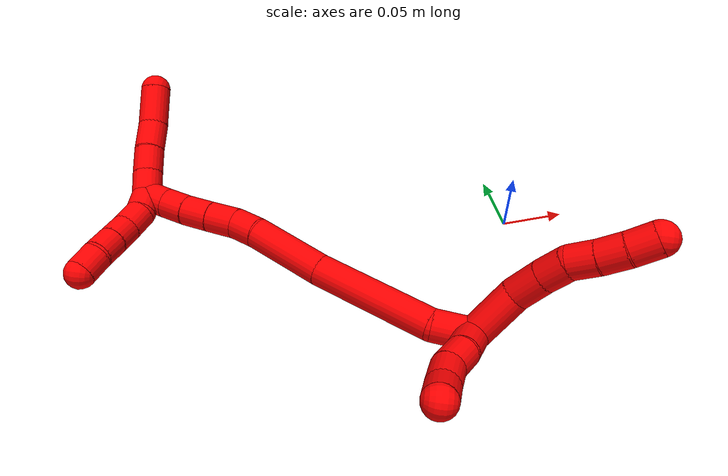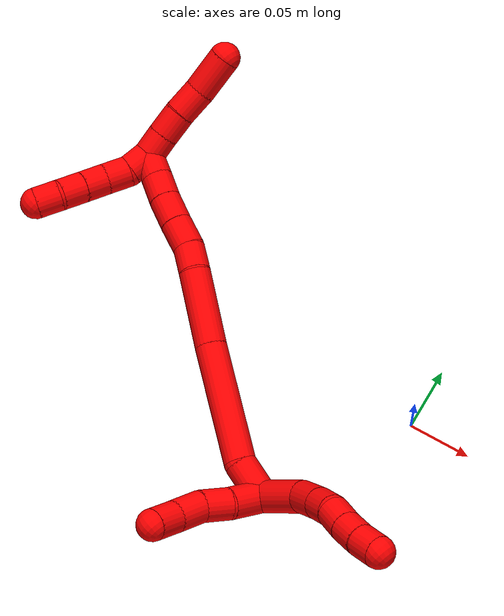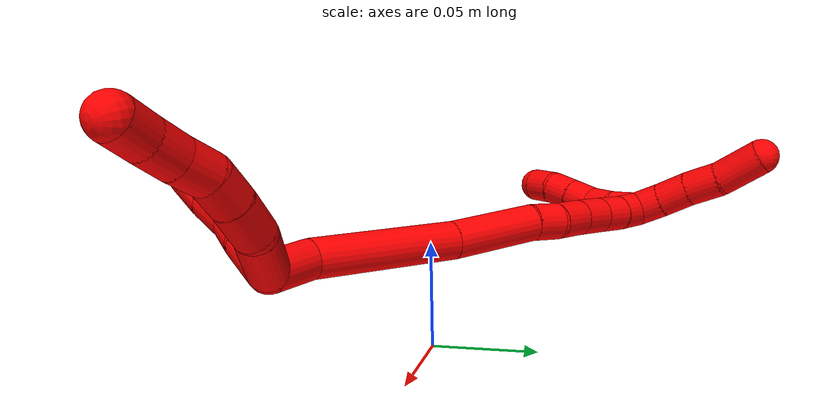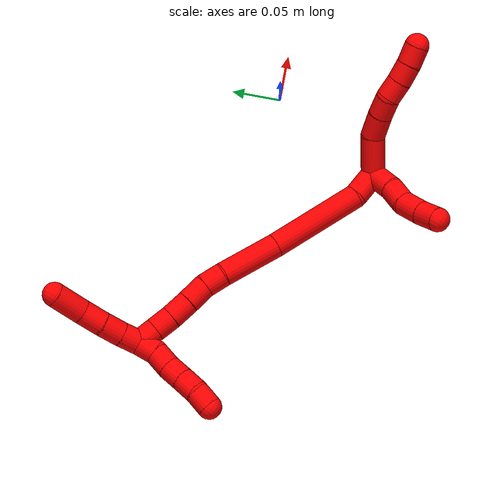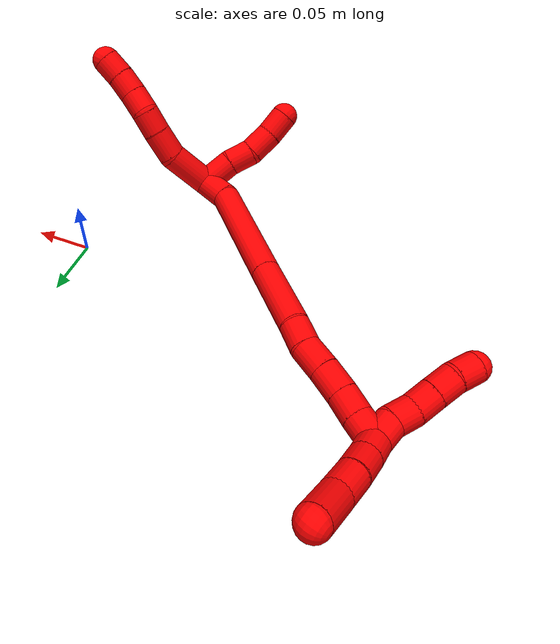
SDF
<sdf version="1.7">
 <world name="default">
  <model name="2">
   <static>0</static>
   <link name="2">
    <collision name="collision-cylinder-e_1_2_8">
     <pose>0.00149 0.017385 -0.012236 -2.18411 0.069969 -0.134663</pose>
     <geometry><cylinder><radius>0.0125</radius><length>0.042623</length></cylinder></geometry>
     <surface>
      <friction><ode><mu>1.16</mu><mu2>1.16</mu2><slip1>0</slip1><slip2>0</slip2></ode></friction>
      <contact><ode><kp>1e+06</kp><kd>1</kd><max_vel>0</max_vel><min_depth>0.001</min_depth></ode></contact>
     </surface>
    </collision>
    <visual name="visual-cylinder-e_1_2_8">
     <pose>0.00149 0.017385 -0.012236 -2.18411 0.069969 -0.134663</pose>
     <geometry><cylinder><radius>0.0125</radius><length>0.042623</length></cylinder></geometry>
     <material><ambient>1 0 0 1</ambient></material>
    </visual>
    <collision name="collision-cylinder-e_2_8_9">
     <pose>0.00813 0.043892 -0.032093 -2.26667 0.408887 -0.834592</pose>
     <geometry><cylinder><radius>0.0125</radius><length>0.025909</length></cylinder></geometry>
     <surface>
      <friction><ode><mu>1.16</mu><mu2>1.16</mu2><slip1>0</slip1><slip2>0</slip2></ode></friction>
      <contact><ode><kp>1e+06</kp><kd>1</kd><max_vel>0</max_vel><min_depth>0.001</min_depth></ode></contact>
     </surface>
    </collision>
    <visual name="visual-cylinder-e_2_8_9">
     <pose>0.00813 0.043892 -0.032093 -2.26667 0.408887 -0.834592</pose>
     <geometry><cylinder><radius>0.0125</radius><length>0.025909</length></cylinder></geometry>
     <material><ambient>1 0 0 1</ambient></material>
    </visual>
    <collision name="collision-cylinder-e_3_9_10">
     <pose>0.017939 0.059899 -0.046176 -2.32469 0.458268 -0.98856</pose>
     <geometry><cylinder><radius>0.0125</radius><length>0.021059</length></cylinder></geometry>
     <surface>
      <friction><ode><mu>1.16</mu><mu2>1.16</mu2><slip1>0</slip1><slip2>0</slip2></ode></friction>
      <contact><ode><kp>1e+06</kp><kd>1</kd><max_vel>0</max_vel><min_depth>0.001</min_depth></ode></contact>
     </surface>
    </collision>
    <visual name="visual-cylinder-e_3_9_10">
     <pose>0.017939 0.059899 -0.046176 -2.32469 0.458268 -0.98856</pose>
     <geometry><cylinder><radius>0.0125</radius><length>0.021059</length></cylinder></geometry>
     <material><ambient>1 0 0 1</ambient></material>
    </visual>
    <collision name="collision-cylinder-e_4_10_11">
     <pose>0.026878 0.070784 -0.060901 -2.69064 0.436354 -1.5368</pose>
     <geometry><cylinder><radius>0.0125</radius><length>0.020255</length></cylinder></geometry>
     <surface>
      <friction><ode><mu>1.16</mu><mu2>1.16</mu2><slip1>0</slip1><slip2>0</slip2></ode></friction>
      <contact><ode><kp>1e+06</kp><kd>1</kd><max_vel>0</max_vel><min_depth>0.001</min_depth></ode></contact>
     </surface>
    </collision>
    <visual name="visual-cylinder-e_4_10_11">
     <pose>0.026878 0.070784 -0.060901 -2.69064 0.436354 -1.5368</pose>
     <geometry><cylinder><radius>0.0125</radius><length>0.020255</length></cylinder></geometry>
     <material><ambient>1 0 0 1</ambient></material>
    </visual>
    <collision name="collision-cylinder-e_5_11_12">
     <pose>0.034925 0.079522 -0.077129 -2.60504 0.386006 -1.23604</pose>
     <geometry><cylinder><radius>0.0125</radius><length>0.02001</length></cylinder></geometry>
     <surface>
      <friction><ode><mu>1.16</mu><mu2>1.16</mu2><slip1>0</slip1><slip2>0</slip2></ode></friction>
      <contact><ode><kp>1e+06</kp><kd>1</kd><max_vel>0</max_vel><min_depth>0.001</min_depth></ode></contact>
     </surface>
    </collision>
    <visual name="visual-cylinder-e_5_11_12">
     <pose>0.034925 0.079522 -0.077129 -2.60504 0.386006 -1.23604</pose>
     <geometry><cylinder><radius>0.0125</radius><length>0.02001</length></cylinder></geometry>
     <material><ambient>1 0 0 1</ambient></material>
    </visual>
    <collision name="collision-cylinder-e_6_12_6">
     <pose>0.041516 0.089584 -0.093165 -2.55838 0.284176 -0.889481</pose>
     <geometry><cylinder><radius>0.0125</radius><length>0.020144</length></cylinder></geometry>
     <surface>
      <friction><ode><mu>1.16</mu><mu2>1.16</mu2><slip1>0</slip1><slip2>0</slip2></ode></friction>
      <contact><ode><kp>1e+06</kp><kd>1</kd><max_vel>0</max_vel><min_depth>0.001</min_depth></ode></contact>
     </surface>
    </collision>
    <visual name="visual-cylinder-e_6_12_6">
     <pose>0.041516 0.089584 -0.093165 -2.55838 0.284176 -0.889481</pose>
     <geometry><cylinder><radius>0.0125</radius><length>0.020144</length></cylinder></geometry>
     <material><ambient>1 0 0 1</ambient></material>
    </visual>
    <collision name="collision-cylinder-e_1_2_13">
     <pose>0.014083 -0.00192 0.004566 0.398035 1.2326 0.283804</pose>
     <geometry><cylinder><radius>0.0125</radius><length>0.029857</length></cylinder></geometry>
     <surface>
      <friction><ode><mu>1.16</mu><mu2>1.16</mu2><slip1>0</slip1><slip2>0</slip2></ode></friction>
      <contact><ode><kp>1e+06</kp><kd>1</kd><max_vel>0</max_vel><min_depth>0.001</min_depth></ode></contact>
     </surface>
    </collision>
    <visual name="visual-cylinder-e_1_2_13">
     <pose>0.014083 -0.00192 0.004566 0.398035 1.2326 0.283804</pose>
     <geometry><cylinder><radius>0.0125</radius><length>0.029857</length></cylinder></geometry>
     <material><ambient>1 0 0 1</ambient></material>
    </visual>
    <collision name="collision-cylinder-e_2_13_14">
     <pose>0.037938 -0.006459 0.014443 0.458131 1.02601 0.261185</pose>
     <geometry><cylinder><radius>0.0125</radius><length>0.022853</length></cylinder></geometry>
     <surface>
      <friction><ode><mu>1.16</mu><mu2>1.16</mu2><slip1>0</slip1><slip2>0</slip2></ode></friction>
      <contact><ode><kp>1e+06</kp><kd>1</kd><max_vel>0</max_vel><min_depth>0.001</min_depth></ode></contact>
     </surface>
    </collision>
    <visual name="visual-cylinder-e_2_13_14">
     <pose>0.037938 -0.006459 0.014443 0.458131 1.02601 0.261185</pose>
     <geometry><cylinder><radius>0.0125</radius><length>0.022853</length></cylinder></geometry>
     <material><ambient>1 0 0 1</ambient></material>
    </visual>
    <collision name="collision-cylinder-e_3_14_15">
     <pose>0.059641 -0.011062 0.021902 0.745805 1.33038 0.595519</pose>
     <geometry><cylinder><radius>0.0125</radius><length>0.024566</length></cylinder></geometry>
     <surface>
      <friction><ode><mu>1.16</mu><mu2>1.16</mu2><slip1>0</slip1><slip2>0</slip2></ode></friction>
      <contact><ode><kp>1e+06</kp><kd>1</kd><max_vel>0</max_vel><min_depth>0.001</min_depth></ode></contact>
     </surface>
    </collision>
    <visual name="visual-cylinder-e_3_14_15">
     <pose>0.059641 -0.011062 0.021902 0.745805 1.33038 0.595519</pose>
     <geometry><cylinder><radius>0.0125</radius><length>0.024566</length></cylinder></geometry>
     <material><ambient>1 0 0 1</ambient></material>
    </visual>
    <collision name="collision-cylinder-e_4_15_5">
     <pose>0.082825 -0.013156 0.025603 0.070403 1.43335 0.061341</pose>
     <geometry><cylinder><radius>0.0125</radius><length>0.022723</length></cylinder></geometry>
     <surface>
      <friction><ode><mu>1.16</mu><mu2>1.16</mu2><slip1>0</slip1><slip2>0</slip2></ode></friction>
      <contact><ode><kp>1e+06</kp><kd>1</kd><max_vel>0</max_vel><min_depth>0.001</min_depth></ode></contact>
     </surface>
    </collision>
    <visual name="visual-cylinder-e_4_15_5">
     <pose>0.082825 -0.013156 0.025603 0.070403 1.43335 0.061341</pose>
     <geometry><cylinder><radius>0.0125</radius><length>0.022723</length></cylinder></geometry>
     <material><ambient>1 0 0 1</ambient></material>
    </visual>
    <collision name="collision-cylinder-e_1_2_16">
     <pose>-0.001633 0.000918 0.015141 -0.060572 -0.10726 0.003253</pose>
     <geometry><cylinder><radius>0.0125</radius><length>0.030513</length></cylinder></geometry>
     <surface>
      <friction><ode><mu>1.16</mu><mu2>1.16</mu2><slip1>0</slip1><slip2>0</slip2></ode></friction>
      <contact><ode><kp>1e+06</kp><kd>1</kd><max_vel>0</max_vel><min_depth>0.001</min_depth></ode></contact>
     </surface>
    </collision>
    <visual name="visual-cylinder-e_1_2_16">
     <pose>-0.001633 0.000918 0.015141 -0.060572 -0.10726 0.003253</pose>
     <geometry><cylinder><radius>0.0125</radius><length>0.030513</length></cylinder></geometry>
     <material><ambient>1 0 0 1</ambient></material>
    </visual>
    <collision name="collision-cylinder-e_2_16_17">
     <pose>-0.023172 0.01128 0.073934 -0.21306 -0.419266 0.045495</pose>
     <geometry><cylinder><radius>0.0125</radius><length>0.097794</length></cylinder></geometry>
     <surface>
      <friction><ode><mu>1.16</mu><mu2>1.16</mu2><slip1>0</slip1><slip2>0</slip2></ode></friction>
      <contact><ode><kp>1e+06</kp><kd>1</kd><max_vel>0</max_vel><min_depth>0.001</min_depth></ode></contact>
     </surface>
    </collision>
    <visual name="visual-cylinder-e_2_16_17">
     <pose>-0.023172 0.01128 0.073934 -0.21306 -0.419266 0.045495</pose>
     <geometry><cylinder><radius>0.0125</radius><length>0.097794</length></cylinder></geometry>
     <material><ambient>1 0 0 1</ambient></material>
    </visual>
    <collision name="collision-cylinder-e_3_17_18">
     <pose>-0.054613 0.029359 0.145056 -0.304552 -0.381033 0.059176</pose>
     <geometry><cylinder><radius>0.0125</radius><length>0.062038</length></cylinder></geometry>
     <surface>
      <friction><ode><mu>1.16</mu><mu2>1.16</mu2><slip1>0</slip1><slip2>0</slip2></ode></friction>
      <contact><ode><kp>1e+06</kp><kd>1</kd><max_vel>0</max_vel><min_depth>0.001</min_depth></ode></contact>
     </surface>
    </collision>
    <visual name="visual-cylinder-e_3_17_18">
     <pose>-0.054613 0.029359 0.145056 -0.304552 -0.381033 0.059176</pose>
     <geometry><cylinder><radius>0.0125</radius><length>0.062038</length></cylinder></geometry>
     <material><ambient>1 0 0 1</ambient></material>
    </visual>
    <collision name="collision-cylinder-e_4_18_19">
     <pose>-0.07102 0.039649 0.1821 -0.171194 -0.464684 0.040601</pose>
     <geometry><cylinder><radius>0.0125</radius><length>0.02174</length></cylinder></geometry>
     <surface>
      <friction><ode><mu>1.16</mu><mu2>1.16</mu2><slip1>0</slip1><slip2>0</slip2></ode></friction>
      <contact><ode><kp>1e+06</kp><kd>1</kd><max_vel>0</max_vel><min_depth>0.001</min_depth></ode></contact>
     </surface>
    </collision>
    <visual name="visual-cylinder-e_4_18_19">
     <pose>-0.07102 0.039649 0.1821 -0.171194 -0.464684 0.040601</pose>
     <geometry><cylinder><radius>0.0125</radius><length>0.02174</length></cylinder></geometry>
     <material><ambient>1 0 0 1</ambient></material>
    </visual>
    <collision name="collision-cylinder-e_5_19_20">
     <pose>-0.078939 0.041959 0.203059 -0.057517 -0.261244 0.007558</pose>
     <geometry><cylinder><radius>0.0125</radius><length>0.023606</length></cylinder></geometry>
     <surface>
      <friction><ode><mu>1.16</mu><mu2>1.16</mu2><slip1>0</slip1><slip2>0</slip2></ode></friction>
      <contact><ode><kp>1e+06</kp><kd>1</kd><max_vel>0</max_vel><min_depth>0.001</min_depth></ode></contact>
     </surface>
    </collision>
    <visual name="visual-cylinder-e_5_19_20">
     <pose>-0.078939 0.041959 0.203059 -0.057517 -0.261244 0.007558</pose>
     <geometry><cylinder><radius>0.0125</radius><length>0.023606</length></cylinder></geometry>
     <material><ambient>1 0 0 1</ambient></material>
    </visual>
    <collision name="collision-cylinder-e_6_20_21">
     <pose>-0.085497 0.043278 0.225397 -0.060412 -0.309494 0.009427</pose>
     <geometry><cylinder><radius>0.0125</radius><length>0.023043</length></cylinder></geometry>
     <surface>
      <friction><ode><mu>1.16</mu><mu2>1.16</mu2><slip1>0</slip1><slip2>0</slip2></ode></friction>
      <contact><ode><kp>1e+06</kp><kd>1</kd><max_vel>0</max_vel><min_depth>0.001</min_depth></ode></contact>
     </surface>
    </collision>
    <visual name="visual-cylinder-e_6_20_21">
     <pose>-0.085497 0.043278 0.225397 -0.060412 -0.309494 0.009427</pose>
     <geometry><cylinder><radius>0.0125</radius><length>0.023043</length></cylinder></geometry>
     <material><ambient>1 0 0 1</ambient></material>
    </visual>
    <collision name="collision-cylinder-e_7_21_22">
     <pose>-0.092691 0.045067 0.245937 -0.116971 -0.364627 0.021589</pose>
     <geometry><cylinder><radius>0.0125</radius><length>0.020664</length></cylinder></geometry>
     <surface>
      <friction><ode><mu>1.16</mu><mu2>1.16</mu2><slip1>0</slip1><slip2>0</slip2></ode></friction>
      <contact><ode><kp>1e+06</kp><kd>1</kd><max_vel>0</max_vel><min_depth>0.001</min_depth></ode></contact>
     </surface>
    </collision>
    <visual name="visual-cylinder-e_7_21_22">
     <pose>-0.092691 0.045067 0.245937 -0.116971 -0.364627 0.021589</pose>
     <geometry><cylinder><radius>0.0125</radius><length>0.020664</length></cylinder></geometry>
     <material><ambient>1 0 0 1</ambient></material>
    </visual>
    <collision name="collision-cylinder-e_8_22_1">
     <pose>-0.099458 0.04773 0.265232 -0.156986 -0.303946 0.024091</pose>
     <geometry><cylinder><radius>0.0125</radius><length>0.020602</length></cylinder></geometry>
     <surface>
      <friction><ode><mu>1.16</mu><mu2>1.16</mu2><slip1>0</slip1><slip2>0</slip2></ode></friction>
      <contact><ode><kp>1e+06</kp><kd>1</kd><max_vel>0</max_vel><min_depth>0.001</min_depth></ode></contact>
     </surface>
    </collision>
    <visual name="visual-cylinder-e_8_22_1">
     <pose>-0.099458 0.04773 0.265232 -0.156986 -0.303946 0.024091</pose>
     <geometry><cylinder><radius>0.0125</radius><length>0.020602</length></cylinder></geometry>
     <material><ambient>1 0 0 1</ambient></material>
    </visual>
    <collision name="collision-cylinder-e_1_1_23">
     <pose>-0.094496 0.04333 0.27477 1.59947 0.934914 0.958179</pose>
     <geometry><cylinder><radius>0.0125</radius><length>0.02</length></cylinder></geometry>
     <surface>
      <friction><ode><mu>1.16</mu><mu2>1.16</mu2><slip1>0</slip1><slip2>0</slip2></ode></friction>
      <contact><ode><kp>1e+06</kp><kd>1</kd><max_vel>0</max_vel><min_depth>0.001</min_depth></ode></contact>
     </surface>
    </collision>
    <visual name="visual-cylinder-e_1_1_23">
     <pose>-0.094496 0.04333 0.27477 1.59947 0.934914 0.958179</pose>
     <geometry><cylinder><radius>0.0125</radius><length>0.02</length></cylinder></geometry>
     <material><ambient>1 0 0 1</ambient></material>
    </visual>
    <collision name="collision-cylinder-e_2_23_24">
     <pose>-0.078735 0.031909 0.277825 1.0392 0.881171 0.526885</pose>
     <geometry><cylinder><radius>0.0125</radius><length>0.02</length></cylinder></geometry>
     <surface>
      <friction><ode><mu>1.16</mu><mu2>1.16</mu2><slip1>0</slip1><slip2>0</slip2></ode></friction>
      <contact><ode><kp>1e+06</kp><kd>1</kd><max_vel>0</max_vel><min_depth>0.001</min_depth></ode></contact>
     </surface>
    </collision>
    <visual name="visual-cylinder-e_2_23_24">
     <pose>-0.078735 0.031909 0.277825 1.0392 0.881171 0.526885</pose>
     <geometry><cylinder><radius>0.0125</radius><length>0.02</length></cylinder></geometry>
     <material><ambient>1 0 0 1</ambient></material>
    </visual>
    <collision name="collision-cylinder-e_3_24_25">
     <pose>-0.062073 0.022622 0.283393 1.01865 1.10779 0.665142</pose>
     <geometry><cylinder><radius>0.0125</radius><length>0.02</length></cylinder></geometry>
     <surface>
      <friction><ode><mu>1.16</mu><mu2>1.16</mu2><slip1>0</slip1><slip2>0</slip2></ode></friction>
      <contact><ode><kp>1e+06</kp><kd>1</kd><max_vel>0</max_vel><min_depth>0.001</min_depth></ode></contact>
     </surface>
    </collision>
    <visual name="visual-cylinder-e_3_24_25">
     <pose>-0.062073 0.022622 0.283393 1.01865 1.10779 0.665142</pose>
     <geometry><cylinder><radius>0.0125</radius><length>0.02</length></cylinder></geometry>
     <material><ambient>1 0 0 1</ambient></material>
    </visual>
    <collision name="collision-cylinder-e_4_25_26">
     <pose>-0.044247 0.014934 0.2882 1.00562 1.09269 0.645461</pose>
     <geometry><cylinder><radius>0.0125</radius><length>0.02</length></cylinder></geometry>
     <surface>
      <friction><ode><mu>1.16</mu><mu2>1.16</mu2><slip1>0</slip1><slip2>0</slip2></ode></friction>
      <contact><ode><kp>1e+06</kp><kd>1</kd><max_vel>0</max_vel><min_depth>0.001</min_depth></ode></contact>
     </surface>
    </collision>
    <visual name="visual-cylinder-e_4_25_26">
     <pose>-0.044247 0.014934 0.2882 1.00562 1.09269 0.645461</pose>
     <geometry><cylinder><radius>0.0125</radius><length>0.02</length></cylinder></geometry>
     <material><ambient>1 0 0 1</ambient></material>
    </visual>
    <collision name="collision-cylinder-e_5_26_4">
     <pose>-0.02777 0.005447 0.293961 1.03874 0.863179 0.514924</pose>
     <geometry><cylinder><radius>0.0125</radius><length>0.02</length></cylinder></geometry>
     <surface>
      <friction><ode><mu>1.16</mu><mu2>1.16</mu2><slip1>0</slip1><slip2>0</slip2></ode></friction>
      <contact><ode><kp>1e+06</kp><kd>1</kd><max_vel>0</max_vel><min_depth>0.001</min_depth></ode></contact>
     </surface>
    </collision>
    <visual name="visual-cylinder-e_5_26_4">
     <pose>-0.02777 0.005447 0.293961 1.03874 0.863179 0.514924</pose>
     <geometry><cylinder><radius>0.0125</radius><length>0.02</length></cylinder></geometry>
     <material><ambient>1 0 0 1</ambient></material>
    </visual>
    <collision name="collision-cylinder-e_1_1_27">
     <pose>-0.107868 0.057771 0.276909 -1.34332 -0.547925 0.439596</pose>
     <geometry><cylinder><radius>0.0125</radius><length>0.020453</length></cylinder></geometry>
     <surface>
      <friction><ode><mu>1.16</mu><mu2>1.16</mu2><slip1>0</slip1><slip2>0</slip2></ode></friction>
      <contact><ode><kp>1e+06</kp><kd>1</kd><max_vel>0</max_vel><min_depth>0.001</min_depth></ode></contact>
     </surface>
    </collision>
    <visual name="visual-cylinder-e_1_1_27">
     <pose>-0.107868 0.057771 0.276909 -1.34332 -0.547925 0.439596</pose>
     <geometry><cylinder><radius>0.0125</radius><length>0.020453</length></cylinder></geometry>
     <material><ambient>1 0 0 1</ambient></material>
    </visual>
    <collision name="collision-cylinder-e_2_27_28">
     <pose>-0.118563 0.075754 0.280537 -1.39748 -0.5088 0.43017</pose>
     <geometry><cylinder><radius>0.0125</radius><length>0.022037</length></cylinder></geometry>
     <surface>
      <friction><ode><mu>1.16</mu><mu2>1.16</mu2><slip1>0</slip1><slip2>0</slip2></ode></friction>
      <contact><ode><kp>1e+06</kp><kd>1</kd><max_vel>0</max_vel><min_depth>0.001</min_depth></ode></contact>
     </surface>
    </collision>
    <visual name="visual-cylinder-e_2_27_28">
     <pose>-0.118563 0.075754 0.280537 -1.39748 -0.5088 0.43017</pose>
     <geometry><cylinder><radius>0.0125</radius><length>0.022037</length></cylinder></geometry>
     <material><ambient>1 0 0 1</ambient></material>
    </visual>
    <collision name="collision-cylinder-e_3_28_29">
     <pose>-0.130582 0.095207 0.283269 -1.46364 -0.58549 0.528768</pose>
     <geometry><cylinder><radius>0.0125</radius><length>0.024074</length></cylinder></geometry>
     <surface>
      <friction><ode><mu>1.16</mu><mu2>1.16</mu2><slip1>0</slip1><slip2>0</slip2></ode></friction>
      <contact><ode><kp>1e+06</kp><kd>1</kd><max_vel>0</max_vel><min_depth>0.001</min_depth></ode></contact>
     </surface>
    </collision>
    <visual name="visual-cylinder-e_3_28_29">
     <pose>-0.130582 0.095207 0.283269 -1.46364 -0.58549 0.528768</pose>
     <geometry><cylinder><radius>0.0125</radius><length>0.024074</length></cylinder></geometry>
     <material><ambient>1 0 0 1</ambient></material>
    </visual>
    <collision name="collision-cylinder-e_4_29_3">
     <pose>-0.143776 0.120445 0.286273 -1.44501 -0.402076 0.355494</pose>
     <geometry><cylinder><radius>0.0125</radius><length>0.033436</length></cylinder></geometry>
     <surface>
      <friction><ode><mu>1.16</mu><mu2>1.16</mu2><slip1>0</slip1><slip2>0</slip2></ode></friction>
      <contact><ode><kp>1e+06</kp><kd>1</kd><max_vel>0</max_vel><min_depth>0.001</min_depth></ode></contact>
     </surface>
    </collision>
    <visual name="visual-cylinder-e_4_29_3">
     <pose>-0.143776 0.120445 0.286273 -1.44501 -0.402076 0.355494</pose>
     <geometry><cylinder><radius>0.0125</radius><length>0.033436</length></cylinder></geometry>
     <material><ambient>1 0 0 1</ambient></material>
    </visual>
    <collision name="collision-sphere-3">
     <pose>-0.150318 0.135708 0.288203 0 -0 0</pose>
     <geometry><sphere><radius>0.0125</radius></sphere></geometry>
     <surface>
      <friction><ode><mu>1.16</mu><mu2>1.16</mu2><slip1>0</slip1><slip2>0</slip2></ode></friction>
      <contact><ode><kp>1e+06</kp><kd>1</kd><max_vel>0</max_vel><min_depth>0.001</min_depth></ode></contact>
     </surface>
    </collision>
    <visual name="visual-sphere-3">
     <pose>-0.150318 0.135708 0.288203 0 -0 0</pose>
     <geometry><sphere><radius>0.0125</radius></sphere></geometry>
     <material><ambient>1 0 0 1</ambient></material>
    </visual>
    <collision name="collision-sphere-29">
     <pose>-0.137234 0.105182 0.284342 0 -0 0</pose>
     <geometry><sphere><radius>0.0125</radius></sphere></geometry>
     <surface>
      <friction><ode><mu>1.16</mu><mu2>1.16</mu2><slip1>0</slip1><slip2>0</slip2></ode></friction>
      <contact><ode><kp>1e+06</kp><kd>1</kd><max_vel>0</max_vel><min_depth>0.001</min_depth></ode></contact>
     </surface>
    </collision>
    <visual name="visual-sphere-29">
     <pose>-0.137234 0.105182 0.284342 0 -0 0</pose>
     <geometry><sphere><radius>0.0125</radius></sphere></geometry>
     <material><ambient>1 0 0 1</ambient></material>
    </visual>
    <collision name="collision-sphere-28">
     <pose>-0.12393 0.085233 0.282196 0 -0 0</pose>
     <geometry><sphere><radius>0.0125</radius></sphere></geometry>
     <surface>
      <friction><ode><mu>1.16</mu><mu2>1.16</mu2><slip1>0</slip1><slip2>0</slip2></ode></friction>
      <contact><ode><kp>1e+06</kp><kd>1</kd><max_vel>0</max_vel><min_depth>0.001</min_depth></ode></contact>
     </surface>
    </collision>
    <visual name="visual-sphere-28">
     <pose>-0.12393 0.085233 0.282196 0 -0 0</pose>
     <geometry><sphere><radius>0.0125</radius></sphere></geometry>
     <material><ambient>1 0 0 1</ambient></material>
    </visual>
    <collision name="collision-sphere-27">
     <pose>-0.113196 0.066276 0.278878 0 -0 0</pose>
     <geometry><sphere><radius>0.0125</radius></sphere></geometry>
     <surface>
      <friction><ode><mu>1.16</mu><mu2>1.16</mu2><slip1>0</slip1><slip2>0</slip2></ode></friction>
      <contact><ode><kp>1e+06</kp><kd>1</kd><max_vel>0</max_vel><min_depth>0.001</min_depth></ode></contact>
     </surface>
    </collision>
    <visual name="visual-sphere-27">
     <pose>-0.113196 0.066276 0.278878 0 -0 0</pose>
     <geometry><sphere><radius>0.0125</radius></sphere></geometry>
     <material><ambient>1 0 0 1</ambient></material>
    </visual>
    <collision name="collision-sphere-4">
     <pose>-0.02017 -0.000155 0.297259 0 -0 0</pose>
     <geometry><sphere><radius>0.0125</radius></sphere></geometry>
     <surface>
      <friction><ode><mu>1.16</mu><mu2>1.16</mu2><slip1>0</slip1><slip2>0</slip2></ode></friction>
      <contact><ode><kp>1e+06</kp><kd>1</kd><max_vel>0</max_vel><min_depth>0.001</min_depth></ode></contact>
     </surface>
    </collision>
    <visual name="visual-sphere-4">
     <pose>-0.02017 -0.000155 0.297259 0 -0 0</pose>
     <geometry><sphere><radius>0.0125</radius></sphere></geometry>
     <material><ambient>1 0 0 1</ambient></material>
    </visual>
    <collision name="collision-sphere-26">
     <pose>-0.035369 0.011048 0.290664 0 -0 0</pose>
     <geometry><sphere><radius>0.0125</radius></sphere></geometry>
     <surface>
      <friction><ode><mu>1.16</mu><mu2>1.16</mu2><slip1>0</slip1><slip2>0</slip2></ode></friction>
      <contact><ode><kp>1e+06</kp><kd>1</kd><max_vel>0</max_vel><min_depth>0.001</min_depth></ode></contact>
     </surface>
    </collision>
    <visual name="visual-sphere-26">
     <pose>-0.035369 0.011048 0.290664 0 -0 0</pose>
     <geometry><sphere><radius>0.0125</radius></sphere></geometry>
     <material><ambient>1 0 0 1</ambient></material>
    </visual>
    <collision name="collision-sphere-25">
     <pose>-0.053126 0.018819 0.285736 0 -0 0</pose>
     <geometry><sphere><radius>0.0125</radius></sphere></geometry>
     <surface>
      <friction><ode><mu>1.16</mu><mu2>1.16</mu2><slip1>0</slip1><slip2>0</slip2></ode></friction>
      <contact><ode><kp>1e+06</kp><kd>1</kd><max_vel>0</max_vel><min_depth>0.001</min_depth></ode></contact>
     </surface>
    </collision>
    <visual name="visual-sphere-25">
     <pose>-0.053126 0.018819 0.285736 0 -0 0</pose>
     <geometry><sphere><radius>0.0125</radius></sphere></geometry>
     <material><ambient>1 0 0 1</ambient></material>
    </visual>
    <collision name="collision-sphere-24">
     <pose>-0.07102 0.026425 0.28105 0 -0 0</pose>
     <geometry><sphere><radius>0.0125</radius></sphere></geometry>
     <surface>
      <friction><ode><mu>1.16</mu><mu2>1.16</mu2><slip1>0</slip1><slip2>0</slip2></ode></friction>
      <contact><ode><kp>1e+06</kp><kd>1</kd><max_vel>0</max_vel><min_depth>0.001</min_depth></ode></contact>
     </surface>
    </collision>
    <visual name="visual-sphere-24">
     <pose>-0.07102 0.026425 0.28105 0 -0 0</pose>
     <geometry><sphere><radius>0.0125</radius></sphere></geometry>
     <material><ambient>1 0 0 1</ambient></material>
    </visual>
    <collision name="collision-sphere-23">
     <pose>-0.08645 0.037394 0.2746 0 -0 0</pose>
     <geometry><sphere><radius>0.0125</radius></sphere></geometry>
     <surface>
      <friction><ode><mu>1.16</mu><mu2>1.16</mu2><slip1>0</slip1><slip2>0</slip2></ode></friction>
      <contact><ode><kp>1e+06</kp><kd>1</kd><max_vel>0</max_vel><min_depth>0.001</min_depth></ode></contact>
     </surface>
    </collision>
    <visual name="visual-sphere-23">
     <pose>-0.08645 0.037394 0.2746 0 -0 0</pose>
     <geometry><sphere><radius>0.0125</radius></sphere></geometry>
     <material><ambient>1 0 0 1</ambient></material>
    </visual>
    <collision name="collision-sphere-1">
     <pose>-0.102541 0.049266 0.27494 0 -0 0</pose>
     <geometry><sphere><radius>0.0125</radius></sphere></geometry>
     <surface>
      <friction><ode><mu>1.16</mu><mu2>1.16</mu2><slip1>0</slip1><slip2>0</slip2></ode></friction>
      <contact><ode><kp>1e+06</kp><kd>1</kd><max_vel>0</max_vel><min_depth>0.001</min_depth></ode></contact>
     </surface>
    </collision>
    <visual name="visual-sphere-1">
     <pose>-0.102541 0.049266 0.27494 0 -0 0</pose>
     <geometry><sphere><radius>0.0125</radius></sphere></geometry>
     <material><ambient>1 0 0 1</ambient></material>
    </visual>
    <collision name="collision-sphere-22">
     <pose>-0.096375 0.046193 0.255524 0 -0 0</pose>
     <geometry><sphere><radius>0.0125</radius></sphere></geometry>
     <surface>
      <friction><ode><mu>1.16</mu><mu2>1.16</mu2><slip1>0</slip1><slip2>0</slip2></ode></friction>
      <contact><ode><kp>1e+06</kp><kd>1</kd><max_vel>0</max_vel><min_depth>0.001</min_depth></ode></contact>
     </surface>
    </collision>
    <visual name="visual-sphere-22">
     <pose>-0.096375 0.046193 0.255524 0 -0 0</pose>
     <geometry><sphere><radius>0.0125</radius></sphere></geometry>
     <material><ambient>1 0 0 1</ambient></material>
    </visual>
    <collision name="collision-sphere-21">
     <pose>-0.089006 0.04394 0.236351 0 -0 0</pose>
     <geometry><sphere><radius>0.0125</radius></sphere></geometry>
     <surface>
      <friction><ode><mu>1.16</mu><mu2>1.16</mu2><slip1>0</slip1><slip2>0</slip2></ode></friction>
      <contact><ode><kp>1e+06</kp><kd>1</kd><max_vel>0</max_vel><min_depth>0.001</min_depth></ode></contact>
     </surface>
    </collision>
    <visual name="visual-sphere-21">
     <pose>-0.089006 0.04394 0.236351 0 -0 0</pose>
     <geometry><sphere><radius>0.0125</radius></sphere></geometry>
     <material><ambient>1 0 0 1</ambient></material>
    </visual>
    <collision name="collision-sphere-12">
     <pose>0.038692 0.08426 -0.085095 0 -0 0</pose>
     <geometry><sphere><radius>0.0125</radius></sphere></geometry>
     <surface>
      <friction><ode><mu>1.16</mu><mu2>1.16</mu2><slip1>0</slip1><slip2>0</slip2></ode></friction>
      <contact><ode><kp>1e+06</kp><kd>1</kd><max_vel>0</max_vel><min_depth>0.001</min_depth></ode></contact>
     </surface>
    </collision>
    <visual name="visual-sphere-12">
     <pose>0.038692 0.08426 -0.085095 0 -0 0</pose>
     <geometry><sphere><radius>0.0125</radius></sphere></geometry>
     <material><ambient>1 0 0 1</ambient></material>
    </visual>
    <collision name="collision-sphere-11">
     <pose>0.031158 0.074784 -0.069162 0 -0 0</pose>
     <geometry><sphere><radius>0.0125</radius></sphere></geometry>
     <surface>
      <friction><ode><mu>1.16</mu><mu2>1.16</mu2><slip1>0</slip1><slip2>0</slip2></ode></friction>
      <contact><ode><kp>1e+06</kp><kd>1</kd><max_vel>0</max_vel><min_depth>0.001</min_depth></ode></contact>
     </surface>
    </collision>
    <visual name="visual-sphere-11">
     <pose>0.031158 0.074784 -0.069162 0 -0 0</pose>
     <geometry><sphere><radius>0.0125</radius></sphere></geometry>
     <material><ambient>1 0 0 1</ambient></material>
    </visual>
    <collision name="collision-sphere-10">
     <pose>0.022598 0.066784 -0.05264 0 -0 0</pose>
     <geometry><sphere><radius>0.0125</radius></sphere></geometry>
     <surface>
      <friction><ode><mu>1.16</mu><mu2>1.16</mu2><slip1>0</slip1><slip2>0</slip2></ode></friction>
      <contact><ode><kp>1e+06</kp><kd>1</kd><max_vel>0</max_vel><min_depth>0.001</min_depth></ode></contact>
     </surface>
    </collision>
    <visual name="visual-sphere-10">
     <pose>0.022598 0.066784 -0.05264 0 -0 0</pose>
     <geometry><sphere><radius>0.0125</radius></sphere></geometry>
     <material><ambient>1 0 0 1</ambient></material>
    </visual>
    <collision name="collision-sphere-9">
     <pose>0.013281 0.053015 -0.039713 0 -0 0</pose>
     <geometry><sphere><radius>0.0125</radius></sphere></geometry>
     <surface>
      <friction><ode><mu>1.16</mu><mu2>1.16</mu2><slip1>0</slip1><slip2>0</slip2></ode></friction>
      <contact><ode><kp>1e+06</kp><kd>1</kd><max_vel>0</max_vel><min_depth>0.001</min_depth></ode></contact>
     </surface>
    </collision>
    <visual name="visual-sphere-9">
     <pose>0.013281 0.053015 -0.039713 0 -0 0</pose>
     <geometry><sphere><radius>0.0125</radius></sphere></geometry>
     <material><ambient>1 0 0 1</ambient></material>
    </visual>
    <collision name="collision-sphere-2">
     <geometry><sphere><radius>0.0125</radius></sphere></geometry>
     <surface>
      <friction><ode><mu>1.16</mu><mu2>1.16</mu2><slip1>0</slip1><slip2>0</slip2></ode></friction>
      <contact><ode><kp>1e+06</kp><kd>1</kd><max_vel>0</max_vel><min_depth>0.001</min_depth></ode></contact>
     </surface>
    </collision>
    <visual name="visual-sphere-2">
     <geometry><sphere><radius>0.0125</radius></sphere></geometry>
     <material><ambient>1 0 0 1</ambient></material>
    </visual>
    <collision name="collision-sphere-19">
     <pose>-0.075891 0.041304 0.191675 0 -0 0</pose>
     <geometry><sphere><radius>0.0125</radius></sphere></geometry>
     <surface>
      <friction><ode><mu>1.16</mu><mu2>1.16</mu2><slip1>0</slip1><slip2>0</slip2></ode></friction>
      <contact><ode><kp>1e+06</kp><kd>1</kd><max_vel>0</max_vel><min_depth>0.001</min_depth></ode></contact>
     </surface>
    </collision>
    <visual name="visual-sphere-19">
     <pose>-0.075891 0.041304 0.191675 0 -0 0</pose>
     <geometry><sphere><radius>0.0125</radius></sphere></geometry>
     <material><ambient>1 0 0 1</ambient></material>
    </visual>
    <collision name="collision-sphere-8">
     <pose>0.00298 0.034769 -0.024473 0 -0 0</pose>
     <geometry><sphere><radius>0.0125</radius></sphere></geometry>
     <surface>
      <friction><ode><mu>1.16</mu><mu2>1.16</mu2><slip1>0</slip1><slip2>0</slip2></ode></friction>
      <contact><ode><kp>1e+06</kp><kd>1</kd><max_vel>0</max_vel><min_depth>0.001</min_depth></ode></contact>
     </surface>
    </collision>
    <visual name="visual-sphere-8">
     <pose>0.00298 0.034769 -0.024473 0 -0 0</pose>
     <geometry><sphere><radius>0.0125</radius></sphere></geometry>
     <material><ambient>1 0 0 1</ambient></material>
    </visual>
    <collision name="collision-sphere-6">
     <pose>0.044339 0.094909 -0.101235 0 -0 0</pose>
     <geometry><sphere><radius>0.0125</radius></sphere></geometry>
     <surface>
      <friction><ode><mu>1.16</mu><mu2>1.16</mu2><slip1>0</slip1><slip2>0</slip2></ode></friction>
      <contact><ode><kp>1e+06</kp><kd>1</kd><max_vel>0</max_vel><min_depth>0.001</min_depth></ode></contact>
     </surface>
    </collision>
    <visual name="visual-sphere-6">
     <pose>0.044339 0.094909 -0.101235 0 -0 0</pose>
     <geometry><sphere><radius>0.0125</radius></sphere></geometry>
     <material><ambient>1 0 0 1</ambient></material>
    </visual>
    <collision name="collision-sphere-13">
     <pose>0.028166 -0.00384 0.009132 0 -0 0</pose>
     <geometry><sphere><radius>0.0125</radius></sphere></geometry>
     <surface>
      <friction><ode><mu>1.16</mu><mu2>1.16</mu2><slip1>0</slip1><slip2>0</slip2></ode></friction>
      <contact><ode><kp>1e+06</kp><kd>1</kd><max_vel>0</max_vel><min_depth>0.001</min_depth></ode></contact>
     </surface>
    </collision>
    <visual name="visual-sphere-13">
     <pose>0.028166 -0.00384 0.009132 0 -0 0</pose>
     <geometry><sphere><radius>0.0125</radius></sphere></geometry>
     <material><ambient>1 0 0 1</ambient></material>
    </visual>
    <collision name="collision-sphere-14">
     <pose>0.047711 -0.009078 0.019754 0 -0 0</pose>
     <geometry><sphere><radius>0.0125</radius></sphere></geometry>
     <surface>
      <friction><ode><mu>1.16</mu><mu2>1.16</mu2><slip1>0</slip1><slip2>0</slip2></ode></friction>
      <contact><ode><kp>1e+06</kp><kd>1</kd><max_vel>0</max_vel><min_depth>0.001</min_depth></ode></contact>
     </surface>
    </collision>
    <visual name="visual-sphere-14">
     <pose>0.047711 -0.009078 0.019754 0 -0 0</pose>
     <geometry><sphere><radius>0.0125</radius></sphere></geometry>
     <material><ambient>1 0 0 1</ambient></material>
    </visual>
    <collision name="collision-sphere-15">
     <pose>0.071571 -0.013047 0.024051 0 -0 0</pose>
     <geometry><sphere><radius>0.0125</radius></sphere></geometry>
     <surface>
      <friction><ode><mu>1.16</mu><mu2>1.16</mu2><slip1>0</slip1><slip2>0</slip2></ode></friction>
      <contact><ode><kp>1e+06</kp><kd>1</kd><max_vel>0</max_vel><min_depth>0.001</min_depth></ode></contact>
     </surface>
    </collision>
    <visual name="visual-sphere-15">
     <pose>0.071571 -0.013047 0.024051 0 -0 0</pose>
     <geometry><sphere><radius>0.0125</radius></sphere></geometry>
     <material><ambient>1 0 0 1</ambient></material>
    </visual>
    <collision name="collision-sphere-5">
     <pose>0.09408 -0.013266 0.027156 0 -0 0</pose>
     <geometry><sphere><radius>0.0125</radius></sphere></geometry>
     <surface>
      <friction><ode><mu>1.16</mu><mu2>1.16</mu2><slip1>0</slip1><slip2>0</slip2></ode></friction>
      <contact><ode><kp>1e+06</kp><kd>1</kd><max_vel>0</max_vel><min_depth>0.001</min_depth></ode></contact>
     </surface>
    </collision>
    <visual name="visual-sphere-5">
     <pose>0.09408 -0.013266 0.027156 0 -0 0</pose>
     <geometry><sphere><radius>0.0125</radius></sphere></geometry>
     <material><ambient>1 0 0 1</ambient></material>
    </visual>
    <collision name="collision-sphere-16">
     <pose>-0.003267 0.001836 0.030282 0 -0 0</pose>
     <geometry><sphere><radius>0.0125</radius></sphere></geometry>
     <surface>
      <friction><ode><mu>1.16</mu><mu2>1.16</mu2><slip1>0</slip1><slip2>0</slip2></ode></friction>
      <contact><ode><kp>1e+06</kp><kd>1</kd><max_vel>0</max_vel><min_depth>0.001</min_depth></ode></contact>
     </surface>
    </collision>
    <visual name="visual-sphere-16">
     <pose>-0.003267 0.001836 0.030282 0 -0 0</pose>
     <geometry><sphere><radius>0.0125</radius></sphere></geometry>
     <material><ambient>1 0 0 1</ambient></material>
    </visual>
    <collision name="collision-sphere-17">
     <pose>-0.043078 0.020724 0.117586 0 -0 0</pose>
     <geometry><sphere><radius>0.0125</radius></sphere></geometry>
     <surface>
      <friction><ode><mu>1.16</mu><mu2>1.16</mu2><slip1>0</slip1><slip2>0</slip2></ode></friction>
      <contact><ode><kp>1e+06</kp><kd>1</kd><max_vel>0</max_vel><min_depth>0.001</min_depth></ode></contact>
     </surface>
    </collision>
    <visual name="visual-sphere-17">
     <pose>-0.043078 0.020724 0.117586 0 -0 0</pose>
     <geometry><sphere><radius>0.0125</radius></sphere></geometry>
     <material><ambient>1 0 0 1</ambient></material>
    </visual>
    <collision name="collision-sphere-18">
     <pose>-0.066149 0.037993 0.172525 0 -0 0</pose>
     <geometry><sphere><radius>0.0125</radius></sphere></geometry>
     <surface>
      <friction><ode><mu>1.16</mu><mu2>1.16</mu2><slip1>0</slip1><slip2>0</slip2></ode></friction>
      <contact><ode><kp>1e+06</kp><kd>1</kd><max_vel>0</max_vel><min_depth>0.001</min_depth></ode></contact>
     </surface>
    </collision>
    <visual name="visual-sphere-18">
     <pose>-0.066149 0.037993 0.172525 0 -0 0</pose>
     <geometry><sphere><radius>0.0125</radius></sphere></geometry>
     <material><ambient>1 0 0 1</ambient></material>
    </visual>
    <collision name="collision-sphere-20">
     <pose>-0.081988 0.042615 0.214442 0 -0 0</pose>
     <geometry><sphere><radius>0.0125</radius></sphere></geometry>
     <surface>
      <friction><ode><mu>1.16</mu><mu2>1.16</mu2><slip1>0</slip1><slip2>0</slip2></ode></friction>
      <contact><ode><kp>1e+06</kp><kd>1</kd><max_vel>0</max_vel><min_depth>0.001</min_depth></ode></contact>
     </surface>
    </collision>
    <visual name="visual-sphere-20">
     <pose>-0.081988 0.042615 0.214442 0 -0 0</pose>
     <geometry><sphere><radius>0.0125</radius></sphere></geometry>
     <material><ambient>1 0 0 1</ambient></material>
    </visual>
    <inertial>
     <pose>-0.035461 0.03526 0.123188 0 -0 0</pose>
     <mass>0.75</mass>
     <inertia>
      <ixx>0.000142</ixx>
      <ixy>0</ixy>
      <ixz>0</ixz>
      <iyy>0.000143</iyy>
      <iyz>0</iyz>
      <izz>1.1e-05</izz>
     </inertia>
    </inertial>
   </link>
   <pose>-0.068672 -0.110107 0.012476 1.49503 -0.6013 -1.87748</pose>
  </model>
 </world>
</sdf>
